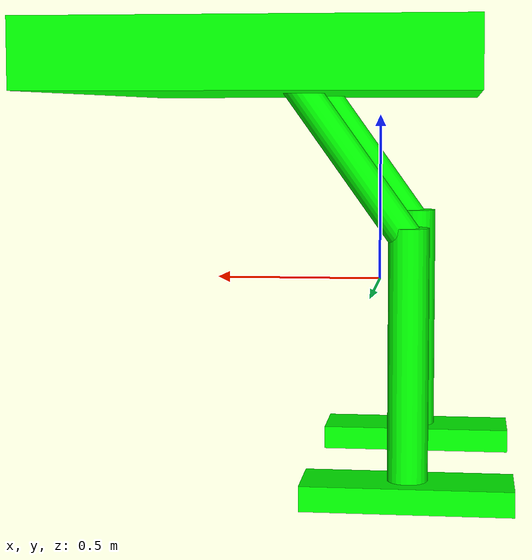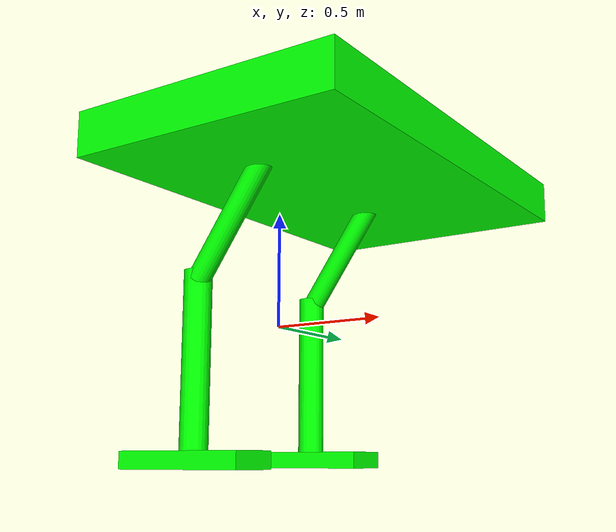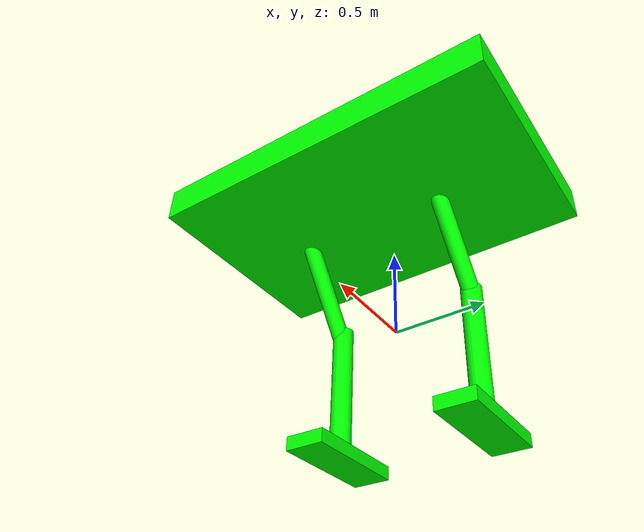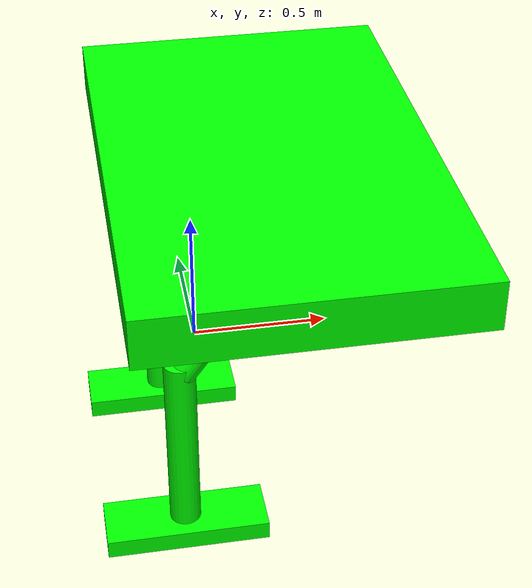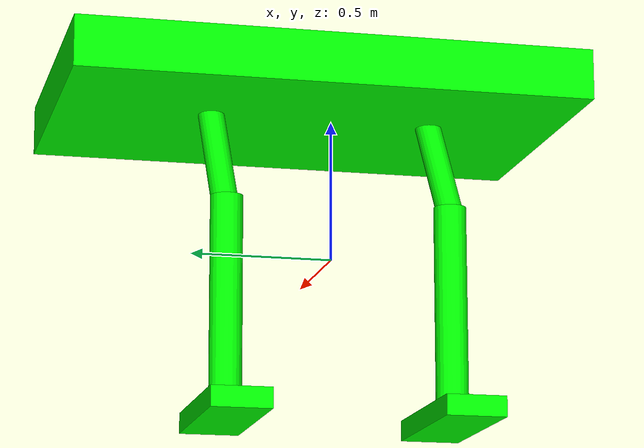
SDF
<?xml version='1.0'?>
<sdf version='1.6'>
  <model name='HumaniodRobot'>
    <link name='link_0'>
      <pose frame=''>-0.102031 -0.405713 -0.175712 0 -0 0</pose>
      <inertial>
        <mass>0.0064572</mass>
        <inertia>
          <ixx>0.00028615</ixx>
          <ixy>0</ixy>
          <ixz>0</ixz>
          <iyy>0.00028615</iyy>
          <iyz>0</iyz>
          <izz>7.19e-06</izz>
        </inertia>
        <pose frame=''>0 0 0 0 -0 0</pose>
      </inertial>
      <self_collide>0</self_collide>
      <kinematic>0</kinematic>
      <gravity>1</gravity>
      <visual name='visual'>
        <pose frame=''>0 0 0 0 -0 0</pose>
        <geometry>
          <cylinder>
            <radius>0.057203</radius>
            <length>0.724636</length>
          </cylinder>
        </geometry>
        <material>
          <lighting>1</lighting>
          <script>
            <uri>file://media/materials/scripts/gazebo.material</uri>
            <name>Gazebo/Grey</name>
          </script>
          <shader type='pixel'>
            <normal_map>__default__</normal_map>
          </shader>
          <ambient>0 1 0 1</ambient>
          <diffuse>0 1 0 1</diffuse>
          <specular>0.01 0.01 0.01 1</specular>
          <emissive>0 0 0 1</emissive>
        </material>
        <transparency>0</transparency>
        <cast_shadows>1</cast_shadows>
      </visual>
      <collision name='collision'>
        <laser_retro>0</laser_retro>
        <max_contacts>10</max_contacts>
        <pose frame=''>0 0 0 0 -0 0</pose>
        <geometry>
          <cylinder>
            <radius>0.057203</radius>
            <length>0.724636</length>
          </cylinder>
        </geometry>
        <surface>
          <friction>
            <ode>
              <mu>1</mu>
              <mu2>1</mu2>
              <fdir1>0 0 0</fdir1>
              <slip1>0</slip1>
              <slip2>0</slip2>
            </ode>
            <torsional>
              <coefficient>1</coefficient>
              <patch_radius>0</patch_radius>
              <surface_radius>0</surface_radius>
              <use_patch_radius>1</use_patch_radius>
              <ode>
                <slip>0</slip>
              </ode>
            </torsional>
          </friction>
          <bounce>
            <restitution_coefficient>0</restitution_coefficient>
            <threshold>1e+06</threshold>
          </bounce>
          <contact>
            <collide_without_contact>0</collide_without_contact>
            <collide_without_contact_bitmask>1</collide_without_contact_bitmask>
            <collide_bitmask>1</collide_bitmask>
            <ode>
              <soft_cfm>0</soft_cfm>
              <soft_erp>0.2</soft_erp>
              <kp>1e+13</kp>
              <kd>1</kd>
              <max_vel>0.01</max_vel>
              <min_depth>0</min_depth>
            </ode>
            <bullet>
              <split_impulse>1</split_impulse>
              <split_impulse_penetration_threshold>-0.01</split_impulse_penetration_threshold>
              <soft_cfm>0</soft_cfm>
              <soft_erp>0.2</soft_erp>
              <kp>1e+13</kp>
              <kd>1</kd>
            </bullet>
          </contact>
        </surface>
      </collision>
    </link>
    <link name='link_0_clone'>
      <pose frame=''>0.074729 -0.414634 0.381917 0 0.619904 0</pose>
      <inertial>
        <mass>0.00513787</mass>
        <inertia>
          <ixx>0.0001452</ixx>
          <ixy>0</ixy>
          <ixz>0</ixz>
          <iyy>0.0001452</iyy>
          <iyz>0</iyz>
          <izz>5.72e-06</izz>
        </inertia>
        <pose frame=''>0 0 0 0 -0 0</pose>
      </inertial>
      <self_collide>0</self_collide>
      <kinematic>0</kinematic>
      <visual name='visual'>
        <pose frame=''>0 0 0 0 -0 0</pose>
        <geometry>
          <cylinder>
            <radius>0.0472028</radius>
            <length>0.576588</length>
          </cylinder>
        </geometry>
        <material>
          <lighting>1</lighting>
          <script>
            <uri>file://media/materials/scripts/gazebo.material</uri>
            <name>Gazebo/Grey</name>
          </script>
          <shader type='pixel'>
            <normal_map>__default__</normal_map>
          </shader>
          <ambient>0 1 0 1</ambient>
          <diffuse>0 1 0 1</diffuse>
          <specular>0.01 0.01 0.01 1</specular>
          <emissive>0 0 0 1</emissive>
        </material>
        <transparency>0</transparency>
        <cast_shadows>1</cast_shadows>
      </visual>
      <collision name='collision'>
        <laser_retro>0</laser_retro>
        <max_contacts>10</max_contacts>
        <pose frame=''>0 0 0 0 -0 0</pose>
        <geometry>
          <cylinder>
            <radius>0.047203</radius>
            <length>0.576588</length>
          </cylinder>
        </geometry>
        <surface>
          <friction>
            <ode>
              <mu>1</mu>
              <mu2>1</mu2>
              <fdir1>0 0 0</fdir1>
              <slip1>0</slip1>
              <slip2>0</slip2>
            </ode>
            <torsional>
              <coefficient>1</coefficient>
              <patch_radius>0</patch_radius>
              <surface_radius>0</surface_radius>
              <use_patch_radius>1</use_patch_radius>
              <ode>
                <slip>0</slip>
              </ode>
            </torsional>
          </friction>
          <bounce>
            <restitution_coefficient>0</restitution_coefficient>
            <threshold>1e+06</threshold>
          </bounce>
          <contact>
            <collide_without_contact>0</collide_without_contact>
            <collide_without_contact_bitmask>1</collide_without_contact_bitmask>
            <collide_bitmask>1</collide_bitmask>
            <ode>
              <soft_cfm>0</soft_cfm>
              <soft_erp>0.2</soft_erp>
              <kp>1e+13</kp>
              <kd>1</kd>
              <max_vel>0.01</max_vel>
              <min_depth>0</min_depth>
            </ode>
            <bullet>
              <split_impulse>1</split_impulse>
              <split_impulse_penetration_threshold>-0.01</split_impulse_penetration_threshold>
              <soft_cfm>0</soft_cfm>
              <soft_erp>0.2</soft_erp>
              <kp>1e+13</kp>
              <kd>1</kd>
            </bullet>
          </contact>
        </surface>
      </collision>
    </link>
    <link name='link_0_clone_0'>
      <pose frame=''>-0.102031 0.394287 -0.175712 0 -0 0</pose>
      <inertial>
        <mass>0.0064572</mass>
        <inertia>
          <ixx>0.00028615</ixx>
          <ixy>0</ixy>
          <ixz>0</ixz>
          <iyy>0.00028615</iyy>
          <iyz>0</iyz>
          <izz>7.19e-06</izz>
        </inertia>
        <pose frame=''>0 0 0 0 -0 0</pose>
      </inertial>
      <self_collide>0</self_collide>
      <kinematic>0</kinematic>
      <gravity>1</gravity>
      <visual name='visual'>
        <pose frame=''>0 0 0 0 -0 0</pose>
        <geometry>
          <cylinder>
            <radius>0.057203</radius>
            <length>0.724636</length>
          </cylinder>
        </geometry>
        <material>
          <lighting>1</lighting>
          <script>
            <uri>file://media/materials/scripts/gazebo.material</uri>
            <name>Gazebo/Grey</name>
          </script>
          <shader type='pixel'>
            <normal_map>__default__</normal_map>
          </shader>
          <ambient>0 1 0 1</ambient>
          <diffuse>0 1 0 1</diffuse>
          <specular>0.01 0.01 0.01 1</specular>
          <emissive>0 0 0 1</emissive>
        </material>
        <transparency>0</transparency>
        <cast_shadows>1</cast_shadows>
      </visual>
      <collision name='collision'>
        <laser_retro>0</laser_retro>
        <max_contacts>10</max_contacts>
        <pose frame=''>0 0 0 0 -0 0</pose>
        <geometry>
          <cylinder>
            <radius>0.057203</radius>
            <length>0.724636</length>
          </cylinder>
        </geometry>
        <surface>
          <friction>
            <ode>
              <mu>1</mu>
              <mu2>1</mu2>
              <fdir1>0 0 0</fdir1>
              <slip1>0</slip1>
              <slip2>0</slip2>
            </ode>
            <torsional>
              <coefficient>1</coefficient>
              <patch_radius>0</patch_radius>
              <surface_radius>0</surface_radius>
              <use_patch_radius>1</use_patch_radius>
              <ode>
                <slip>0</slip>
              </ode>
            </torsional>
          </friction>
          <bounce>
            <restitution_coefficient>0</restitution_coefficient>
            <threshold>1e+06</threshold>
          </bounce>
          <contact>
            <collide_without_contact>0</collide_without_contact>
            <collide_without_contact_bitmask>1</collide_without_contact_bitmask>
            <collide_bitmask>1</collide_bitmask>
            <ode>
              <soft_cfm>0</soft_cfm>
              <soft_erp>0.2</soft_erp>
              <kp>1e+13</kp>
              <kd>1</kd>
              <max_vel>0.01</max_vel>
              <min_depth>0</min_depth>
            </ode>
            <bullet>
              <split_impulse>1</split_impulse>
              <split_impulse_penetration_threshold>-0.01</split_impulse_penetration_threshold>
              <soft_cfm>0</soft_cfm>
              <soft_erp>0.2</soft_erp>
              <kp>1e+13</kp>
              <kd>1</kd>
            </bullet>
          </contact>
        </surface>
      </collision>
    </link>
    <link name='link_0_clone_clone'>
      <pose frame=''>0.065085 0.39731 0.381327 0 0.619904 0</pose>
      <inertial>
        <mass>0.00513787</mass>
        <inertia>
          <ixx>0.0001452</ixx>
          <ixy>0</ixy>
          <ixz>0</ixz>
          <iyy>0.0001452</iyy>
          <iyz>0</iyz>
          <izz>5.72e-06</izz>
        </inertia>
        <pose frame=''>0 0 0 0 -0 0</pose>
      </inertial>
      <self_collide>0</self_collide>
      <kinematic>0</kinematic>
      <visual name='visual'>
        <pose frame=''>0 0 0 0 -0 0</pose>
        <geometry>
          <cylinder>
            <radius>0.0472028</radius>
            <length>0.576588</length>
          </cylinder>
        </geometry>
        <material>
          <lighting>1</lighting>
          <script>
            <uri>file://media/materials/scripts/gazebo.material</uri>
            <name>Gazebo/Grey</name>
          </script>
          <shader type='pixel'>
            <normal_map>__default__</normal_map>
          </shader>
          <ambient>0 1 0 1</ambient>
          <diffuse>0 1 0 1</diffuse>
          <specular>0.01 0.01 0.01 1</specular>
          <emissive>0 0 0 1</emissive>
        </material>
        <transparency>0</transparency>
        <cast_shadows>1</cast_shadows>
      </visual>
      <collision name='collision'>
        <laser_retro>0</laser_retro>
        <max_contacts>10</max_contacts>
        <pose frame=''>0 0 0 0 -0 0</pose>
        <geometry>
          <cylinder>
            <radius>0.047203</radius>
            <length>0.576588</length>
          </cylinder>
        </geometry>
        <surface>
          <friction>
            <ode>
              <mu>1</mu>
              <mu2>1</mu2>
              <fdir1>0 0 0</fdir1>
              <slip1>0</slip1>
              <slip2>0</slip2>
            </ode>
            <torsional>
              <coefficient>1</coefficient>
              <patch_radius>0</patch_radius>
              <surface_radius>0</surface_radius>
              <use_patch_radius>1</use_patch_radius>
              <ode>
                <slip>0</slip>
              </ode>
            </torsional>
          </friction>
          <bounce>
            <restitution_coefficient>0</restitution_coefficient>
            <threshold>1e+06</threshold>
          </bounce>
          <contact>
            <collide_without_contact>0</collide_without_contact>
            <collide_without_contact_bitmask>1</collide_without_contact_bitmask>
            <collide_bitmask>1</collide_bitmask>
            <ode>
              <soft_cfm>0</soft_cfm>
              <soft_erp>0.2</soft_erp>
              <kp>1e+13</kp>
              <kd>1</kd>
              <max_vel>0.01</max_vel>
              <min_depth>0</min_depth>
            </ode>
            <bullet>
              <split_impulse>1</split_impulse>
              <split_impulse_penetration_threshold>-0.01</split_impulse_penetration_threshold>
              <soft_cfm>0</soft_cfm>
              <soft_erp>0.2</soft_erp>
              <kp>1e+13</kp>
              <kd>1</kd>
            </bullet>
          </contact>
        </surface>
      </collision>
    </link>
    <link name='link_1'>
      <pose frame=''>-0.102031 -0.405713 -0.564574 0 -0 0</pose>
      <inertial>
        <mass>0.00904323</mass>
        <inertia>
          <ixx>3.715e-05</ixx>
          <ixy>0</ixy>
          <ixz>0</ixz>
          <iyy>0.00027341</iyy>
          <iyz>0</iyz>
          <izz>0.00030275</izz>
        </inertia>
        <pose frame=''>0 0 0 0 -0 0</pose>
      </inertial>
      <self_collide>0</self_collide>
      <kinematic>0</kinematic>
      <visual name='visual'>
        <pose frame=''>0 0 0 0 -0 0</pose>
        <geometry>
          <box>
            <size>0.59802 0.210029 0.071981</size>
          </box>
        </geometry>
        <material>
          <lighting>1</lighting>
          <script>
            <uri>file://media/materials/scripts/gazebo.material</uri>
            <name>Gazebo/Grey</name>
          </script>
          <shader type='pixel'>
            <normal_map>__default__</normal_map>
          </shader>
          <ambient>0 1 0 1</ambient>
          <diffuse>0 1 0 1</diffuse>
          <specular>0.01 0.01 0.01 1</specular>
          <emissive>0 0 0 1</emissive>
        </material>
        <transparency>0</transparency>
        <cast_shadows>1</cast_shadows>
      </visual>
      <collision name='collision'>
        <laser_retro>0</laser_retro>
        <max_contacts>10</max_contacts>
        <pose frame=''>0 0 0 0 -0 0</pose>
        <geometry>
          <box>
            <size>0.59802 0.210029 0.071981</size>
          </box>
        </geometry>
        <surface>
          <friction>
            <ode>
              <mu>1</mu>
              <mu2>1</mu2>
              <fdir1>0 0 0</fdir1>
              <slip1>0</slip1>
              <slip2>0</slip2>
            </ode>
            <torsional>
              <coefficient>1</coefficient>
              <patch_radius>0</patch_radius>
              <surface_radius>0</surface_radius>
              <use_patch_radius>1</use_patch_radius>
              <ode>
                <slip>0</slip>
              </ode>
            </torsional>
          </friction>
          <bounce>
            <restitution_coefficient>0</restitution_coefficient>
            <threshold>1e+06</threshold>
          </bounce>
          <contact>
            <collide_without_contact>0</collide_without_contact>
            <collide_without_contact_bitmask>1</collide_without_contact_bitmask>
            <collide_bitmask>1</collide_bitmask>
            <ode>
              <soft_cfm>0</soft_cfm>
              <soft_erp>0.2</soft_erp>
              <kp>1e+13</kp>
              <kd>1</kd>
              <max_vel>0.01</max_vel>
              <min_depth>0</min_depth>
            </ode>
            <bullet>
              <split_impulse>1</split_impulse>
              <split_impulse_penetration_threshold>-0.01</split_impulse_penetration_threshold>
              <soft_cfm>0</soft_cfm>
              <soft_erp>0.2</soft_erp>
              <kp>1e+13</kp>
              <kd>1</kd>
            </bullet>
          </contact>
        </surface>
      </collision>
    </link>
    <link name='link_1_clone'>
      <pose frame=''>-0.102031 0.394287 -0.564574 0 -0 0</pose>
      <inertial>
        <mass>0.00904323</mass>
        <inertia>
          <ixx>3.715e-05</ixx>
          <ixy>0</ixy>
          <ixz>0</ixz>
          <iyy>0.00027341</iyy>
          <iyz>0</iyz>
          <izz>0.00030275</izz>
        </inertia>
        <pose frame=''>0 0 0 0 -0 0</pose>
      </inertial>
      <self_collide>0</self_collide>
      <kinematic>0</kinematic>
      <visual name='visual'>
        <pose frame=''>0 0 0 0 -0 0</pose>
        <geometry>
          <box>
            <size>0.59802 0.210029 0.071981</size>
          </box>
        </geometry>
        <material>
          <lighting>1</lighting>
          <script>
            <uri>file://media/materials/scripts/gazebo.material</uri>
            <name>Gazebo/Grey</name>
          </script>
          <shader type='pixel'>
            <normal_map>__default__</normal_map>
          </shader>
          <ambient>0 1 0 1</ambient>
          <diffuse>0 1 0 1</diffuse>
          <specular>0.01 0.01 0.01 1</specular>
          <emissive>0 0 0 1</emissive>
        </material>
        <transparency>0</transparency>
        <cast_shadows>1</cast_shadows>
      </visual>
      <collision name='collision'>
        <laser_retro>0</laser_retro>
        <max_contacts>10</max_contacts>
        <pose frame=''>0 0 0 0 -0 0</pose>
        <geometry>
          <box>
            <size>0.59802 0.210029 0.071981</size>
          </box>
        </geometry>
        <surface>
          <friction>
            <ode>
              <mu>1</mu>
              <mu2>1</mu2>
              <fdir1>0 0 0</fdir1>
              <slip1>0</slip1>
              <slip2>0</slip2>
            </ode>
            <torsional>
              <coefficient>1</coefficient>
              <patch_radius>0</patch_radius>
              <surface_radius>0</surface_radius>
              <use_patch_radius>1</use_patch_radius>
              <ode>
                <slip>0</slip>
              </ode>
            </torsional>
          </friction>
          <bounce>
            <restitution_coefficient>0</restitution_coefficient>
            <threshold>1e+06</threshold>
          </bounce>
          <contact>
            <collide_without_contact>0</collide_without_contact>
            <collide_without_contact_bitmask>1</collide_without_contact_bitmask>
            <collide_bitmask>1</collide_bitmask>
            <ode>
              <soft_cfm>0</soft_cfm>
              <soft_erp>0.2</soft_erp>
              <kp>1e+13</kp>
              <kd>1</kd>
              <max_vel>0.01</max_vel>
              <min_depth>0</min_depth>
            </ode>
            <bullet>
              <split_impulse>1</split_impulse>
              <split_impulse_penetration_threshold>-0.01</split_impulse_penetration_threshold>
              <soft_cfm>0</soft_cfm>
              <soft_erp>0.2</soft_erp>
              <kp>1e+13</kp>
              <kd>1</kd>
            </bullet>
          </contact>
        </surface>
      </collision>
    </link>
    <link name='link_2'>
      <pose frame=''>0.284024 0.037529 0.651649 0 -0 0</pose>
      <inertial>
        <mass>0.393373</mass>
        <inertia>
          <ixx>0.112637</ixx>
          <ixy>0</ixy>
          <ixz>0</ixz>
          <iyy>0.0454832</iyy>
          <iyz>0</iyz>
          <izz>0.155918</izz>
        </inertia>
        <pose frame=''>0 0 0 0 -0 0</pose>
      </inertial>
      <self_collide>0</self_collide>
      <kinematic>0</kinematic>
      <visual name='visual'>
        <pose frame=''>0 0 0 0 -0 0</pose>
        <geometry>
          <box>
            <size>1.16357 1.84457 0.183272</size>
          </box>
        </geometry>
        <material>
          <lighting>1</lighting>
          <script>
            <uri>file://media/materials/scripts/gazebo.material</uri>
            <name>Gazebo/Grey</name>
          </script>
          <shader type='pixel'>
            <normal_map>__default__</normal_map>
          </shader>
          <ambient>0 1 0 1</ambient>
          <diffuse>0 1 0 1</diffuse>
          <specular>0.01 0.01 0.01 1</specular>
          <emissive>0 0 0 1</emissive>
        </material>
        <transparency>0</transparency>
        <cast_shadows>1</cast_shadows>
      </visual>
      <collision name='collision'>
        <laser_retro>0</laser_retro>
        <max_contacts>10</max_contacts>
        <pose frame=''>0 0 0 0 -0 0</pose>
        <geometry>
          <box>
            <size>1.16357 1.84457 0.183272</size>
          </box>
        </geometry>
        <surface>
          <friction>
            <ode>
              <mu>1</mu>
              <mu2>1</mu2>
              <fdir1>0 0 0</fdir1>
              <slip1>0</slip1>
              <slip2>0</slip2>
            </ode>
            <torsional>
              <coefficient>1</coefficient>
              <patch_radius>0</patch_radius>
              <surface_radius>0</surface_radius>
              <use_patch_radius>1</use_patch_radius>
              <ode>
                <slip>0</slip>
              </ode>
            </torsional>
          </friction>
          <bounce>
            <restitution_coefficient>0</restitution_coefficient>
            <threshold>1e+06</threshold>
          </bounce>
          <contact>
            <collide_without_contact>0</collide_without_contact>
            <collide_without_contact_bitmask>1</collide_without_contact_bitmask>
            <collide_bitmask>1</collide_bitmask>
            <ode>
              <soft_cfm>0</soft_cfm>
              <soft_erp>0.2</soft_erp>
              <kp>1e+13</kp>
              <kd>1</kd>
              <max_vel>0.01</max_vel>
              <min_depth>0</min_depth>
            </ode>
            <bullet>
              <split_impulse>1</split_impulse>
              <split_impulse_penetration_threshold>-0.01</split_impulse_penetration_threshold>
              <soft_cfm>0</soft_cfm>
              <soft_erp>0.2</soft_erp>
              <kp>1e+13</kp>
              <kd>1</kd>
            </bullet>
          </contact>
        </surface>
      </collision>
    </link>
    <joint name='link_0_JOINT_1' type='revolute'>
      <parent>link_0</parent>
      <child>link_0_clone</child>
      <pose frame=''>0 0 0 0 -0 0</pose>
      <axis>
        <xyz>1 0 0</xyz>
        <use_parent_model_frame>0</use_parent_model_frame>
        <limit>
          <lower>-1.79769e+308</lower>
          <upper>1.79769e+308</upper>
          <effort>-1</effort>
          <velocity>-1</velocity>
        </limit>
        <dynamics>
          <spring_reference>0</spring_reference>
          <spring_stiffness>0</spring_stiffness>
          <damping>0</damping>
          <friction>0</friction>
        </dynamics>
      </axis>
      <physics>
        <ode>
          <limit>
            <cfm>0</cfm>
            <erp>0.2</erp>
          </limit>
          <suspension>
            <cfm>0</cfm>
            <erp>0.2</erp>
          </suspension>
        </ode>
      </physics>
    </joint>
    <joint name='link_0_clone_0_JOINT_3' type='revolute'>
      <parent>link_0_clone_0</parent>
      <child>link_0_clone_clone</child>
      <pose frame=''>0 0 0 0 -0 0</pose>
      <axis>
        <xyz>1 0 0</xyz>
        <use_parent_model_frame>0</use_parent_model_frame>
        <limit>
          <lower>-1.79769e+308</lower>
          <upper>1.79769e+308</upper>
          <effort>-1</effort>
          <velocity>-1</velocity>
        </limit>
        <dynamics>
          <spring_reference>0</spring_reference>
          <spring_stiffness>0</spring_stiffness>
          <damping>0</damping>
          <friction>0</friction>
        </dynamics>
      </axis>
      <physics>
        <ode>
          <limit>
            <cfm>0</cfm>
            <erp>0.2</erp>
          </limit>
          <suspension>
            <cfm>0</cfm>
            <erp>0.2</erp>
          </suspension>
        </ode>
      </physics>
    </joint>
    <joint name='link_0_clone_JOINT_4' type='revolute'>
      <parent>link_0_clone</parent>
      <child>link_2</child>
      <pose frame=''>0 0 0 0 -0 0</pose>
      <axis>
        <xyz>1 0 0</xyz>
        <use_parent_model_frame>0</use_parent_model_frame>
        <limit>
          <lower>-1.79769e+308</lower>
          <upper>1.79769e+308</upper>
          <effort>-1</effort>
          <velocity>-1</velocity>
        </limit>
        <dynamics>
          <spring_reference>0</spring_reference>
          <spring_stiffness>0</spring_stiffness>
          <damping>0</damping>
          <friction>0</friction>
        </dynamics>
      </axis>
      <physics>
        <ode>
          <limit>
            <cfm>0</cfm>
            <erp>0.2</erp>
          </limit>
          <suspension>
            <cfm>0</cfm>
            <erp>0.2</erp>
          </suspension>
        </ode>
      </physics>
    </joint>
    <joint name='link_0_clone_clone_JOINT_5' type='revolute'>
      <parent>link_0_clone_clone</parent>
      <child>link_2</child>
      <pose frame=''>0 0 0 0 -0 0</pose>
      <axis>
        <xyz>1 0 0</xyz>
        <use_parent_model_frame>0</use_parent_model_frame>
        <limit>
          <lower>-1.79769e+308</lower>
          <upper>1.79769e+308</upper>
          <effort>-1</effort>
          <velocity>-1</velocity>
        </limit>
        <dynamics>
          <spring_reference>0</spring_reference>
          <spring_stiffness>0</spring_stiffness>
          <damping>0</damping>
          <friction>0</friction>
        </dynamics>
      </axis>
      <physics>
        <ode>
          <limit>
            <cfm>0</cfm>
            <erp>0.2</erp>
          </limit>
          <suspension>
            <cfm>0</cfm>
            <erp>0.2</erp>
          </suspension>
        </ode>
      </physics>
    </joint>
    <joint name='link_1_JOINT_0' type='revolute'>
      <parent>link_1</parent>
      <child>link_0</child>
      <pose frame=''>0 0 0 0 -0 0</pose>
      <axis>
        <xyz>1 0 0</xyz>
        <use_parent_model_frame>0</use_parent_model_frame>
        <limit>
          <lower>-1.79769e+308</lower>
          <upper>1.79769e+308</upper>
          <effort>-1</effort>
          <velocity>-1</velocity>
        </limit>
        <dynamics>
          <spring_reference>0</spring_reference>
          <spring_stiffness>0</spring_stiffness>
          <damping>0</damping>
          <friction>0</friction>
        </dynamics>
      </axis>
      <physics>
        <ode>
          <limit>
            <cfm>0</cfm>
            <erp>0.2</erp>
          </limit>
          <suspension>
            <cfm>0</cfm>
            <erp>0.2</erp>
          </suspension>
        </ode>
      </physics>
    </joint>
    <joint name='link_1_clone_JOINT_2' type='revolute'>
      <parent>link_1_clone</parent>
      <child>link_0_clone_0</child>
      <pose frame=''>0 0 0 0 -0 0</pose>
      <axis>
        <xyz>1 0 0</xyz>
        <use_parent_model_frame>0</use_parent_model_frame>
        <limit>
          <lower>-1.79769e+308</lower>
          <upper>1.79769e+308</upper>
          <effort>-1</effort>
          <velocity>-1</velocity>
        </limit>
        <dynamics>
          <spring_reference>0</spring_reference>
          <spring_stiffness>0</spring_stiffness>
          <damping>0</damping>
          <friction>0</friction>
        </dynamics>
      </axis>
      <physics>
        <ode>
          <limit>
            <cfm>0</cfm>
            <erp>0.2</erp>
          </limit>
          <suspension>
            <cfm>0</cfm>
            <erp>0.2</erp>
          </suspension>
        </ode>
      </physics>
    </joint>
    <static>1</static>
    <allow_auto_disable>1</allow_auto_disable>
  </model>
</sdf>
